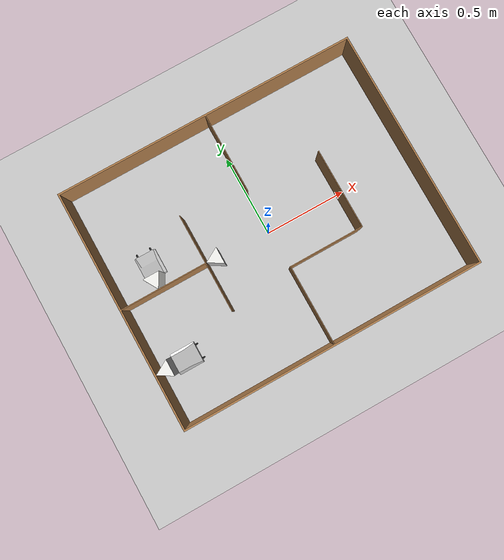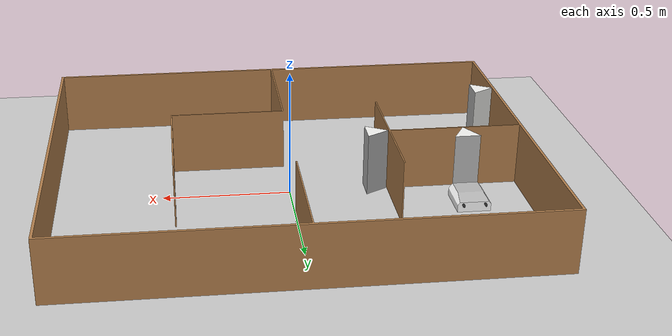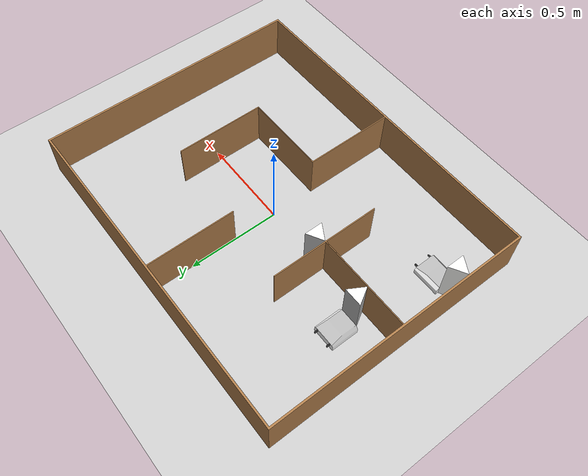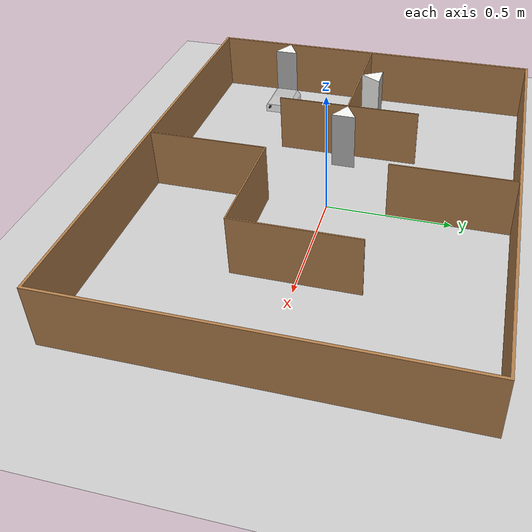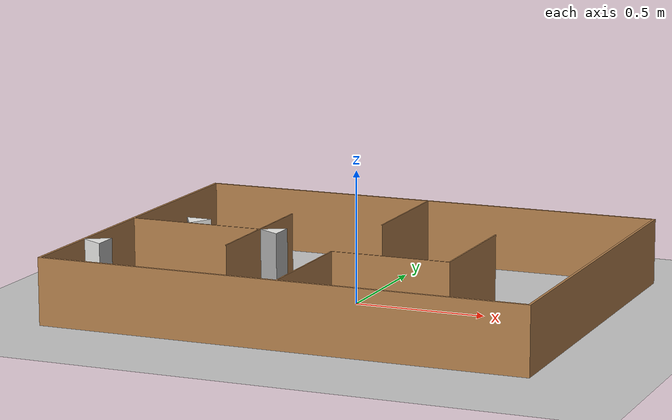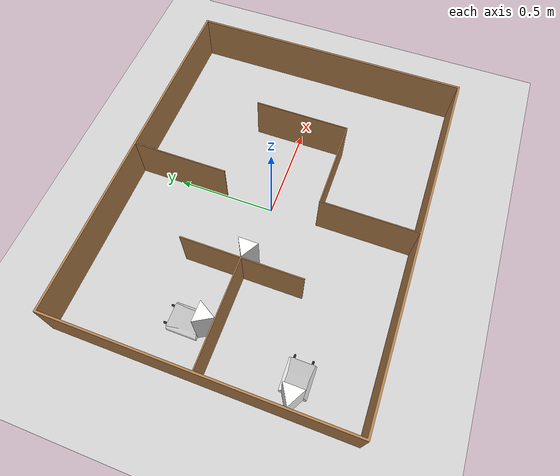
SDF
<sdf version="1.6">
 <world name="default">
  <light name="sun" type="directional">
   <pose>0 0 10 0 -0 0</pose>
   <diffuse>0.8 0.8 0.8 1</diffuse>
   <specular>0.2 0.2 0.2 1</specular>
   <attenuation>
    <range>1000</range>
    <constant>0.9</constant>
    <linear>0.01</linear>
    <quadratic>0.001</quadratic>
   </attenuation>
   <direction>-0.5 0.1 -0.9</direction>
  </light>
  <model name="ground_plane">
   <static>1</static>
   <link name="link">
    <collision name="collision">
     <geometry><plane><normal>0 0 1</normal><size>100 100</size></plane></geometry>
     <surface>
      <contact><collide_bitmask>65535</collide_bitmask></contact>
      <friction><ode><mu>100</mu><mu2>50</mu2></ode></friction>
     </surface>
    </collision>
    <visual name="visual">
     <cast_shadows>0</cast_shadows>
     <geometry><plane><normal>0 0 1</normal><size>100 100</size></plane></geometry>
     <material>
      <script><uri>file://media/materials/scripts/gazebo.material</uri><name>Gazebo/Grey</name></script>
     </material>
    </visual>
   </link>
  </model>
  <gravity>0 0 -9.8</gravity>
  <magnetic_field>6e-06 2.3e-05 -4.2e-05</magnetic_field>
  <atmosphere type="adiabatic"/>
  <physics name="default_physics" default="0" type="ode">
   <max_step_size>0.001</max_step_size>
   <real_time_factor>1</real_time_factor>
   <real_time_update_rate>1000</real_time_update_rate>
  </physics>
  <scene><ambient>0.4 0.4 0.4 1</ambient><background>0.7 0.7 0.7 1</background><shadows>1</shadows></scene>
  <spherical_coordinates>
   <surface_model>EARTH_WGS84</surface_model>
   <latitude_deg>0</latitude_deg>
   <longitude_deg>0</longitude_deg>
   <elevation>0</elevation>
   <heading_deg>0</heading_deg>
  </spherical_coordinates>
  <model name="docking_arena">
   <link name="link_0">
    <inertial>
     <mass>1</mass>
     <inertia>
      <ixx>0.166667</ixx>
      <ixy>0</ixy>
      <ixz>0</ixz>
      <iyy>0.166667</iyy>
      <iyz>0</iyz>
      <izz>0.166667</izz>
     </inertia>
    </inertial>
    <visual name="visual">
     <geometry>
      <mesh><uri>model://docking_arena/meshes/docking_arena.dae</uri><scale>1 1 1</scale></mesh>
     </geometry>
     <material>
      <lighting>1</lighting>
      <script><uri>file://media/materials/scripts/gazebo.material</uri><name>Gazebo/Wood</name></script>
      <ambient>0.3 0.3 0.3 1</ambient>
      <diffuse>0.7 0.7 0.7 1</diffuse>
      <specular>0.01 0.01 0.01 1</specular>
      <emissive>0 0 0 1</emissive>
     </material>
    </visual>
    <collision name="collision">
     <geometry>
      <mesh><uri>model://docking_arena/meshes/docking_arena.dae</uri><scale>1 1 1</scale></mesh>
     </geometry>
     <surface>
      <friction>
       <ode><mu>1</mu><mu2>1</mu2><fdir1>0 0 0</fdir1><slip1>0</slip1><slip2>0</slip2></ode>
       <torsional>
        <coefficient>1</coefficient>
        <patch_radius>0</patch_radius>
        <surface_radius>0</surface_radius>
        <use_patch_radius>1</use_patch_radius>
        <ode><slip>0</slip></ode>
       </torsional>
      </friction>
      <bounce><restitution_coefficient>0</restitution_coefficient><threshold>1e+06</threshold></bounce>
      <contact>
       <collide_without_contact>0</collide_without_contact>
       <collide_without_contact_bitmask>1</collide_without_contact_bitmask>
       <collide_bitmask>1</collide_bitmask>
       <ode>
        <soft_cfm>0</soft_cfm>
        <soft_erp>0.2</soft_erp>
        <kp>1e+13</kp>
        <kd>1</kd>
        <max_vel>0.01</max_vel>
        <min_depth>0</min_depth>
       </ode>
       <bullet>
        <split_impulse>1</split_impulse>
        <split_impulse_penetration_threshold>-0.01</split_impulse_penetration_threshold>
        <soft_cfm>0</soft_cfm>
        <soft_erp>0.2</soft_erp>
        <kp>1e+13</kp>
        <kd>1</kd>
       </bullet>
      </contact>
     </surface>
    </collision>
   </link>
   <static>1</static>
  </model>
  <model name="turn_obstacle">
   <link name="link_6">
    <inertial>
     <mass>1</mass>
     <inertia>
      <ixx>0.166667</ixx>
      <ixy>0</ixy>
      <ixz>0</ixz>
      <iyy>0.166667</iyy>
      <iyz>0</iyz>
      <izz>0.166667</izz>
     </inertia>
    </inertial>
    <visual name="visual">
     <geometry>
      <mesh><uri>model://turn_obstacle/meshes/turn_obstacle.dae</uri><scale>1 1 1</scale></mesh>
     </geometry>
    </visual>
    <collision name="collision">
     <geometry>
      <mesh><uri>model://turn_obstacle/meshes/turn_obstacle.dae</uri><scale>1 1 1</scale></mesh>
     </geometry>
     <surface>
      <friction>
       <ode><mu>1</mu><mu2>1</mu2><fdir1>0 0 0</fdir1><slip1>0</slip1><slip2>0</slip2></ode>
       <torsional>
        <coefficient>1</coefficient>
        <patch_radius>0</patch_radius>
        <surface_radius>0</surface_radius>
        <use_patch_radius>1</use_patch_radius>
        <ode><slip>0</slip></ode>
       </torsional>
      </friction>
      <bounce><restitution_coefficient>0</restitution_coefficient><threshold>1e+06</threshold></bounce>
      <contact>
       <collide_without_contact>0</collide_without_contact>
       <collide_without_contact_bitmask>1</collide_without_contact_bitmask>
       <collide_bitmask>1</collide_bitmask>
       <ode>
        <soft_cfm>0</soft_cfm>
        <soft_erp>0.2</soft_erp>
        <kp>1e+13</kp>
        <kd>1</kd>
        <max_vel>0.01</max_vel>
        <min_depth>0</min_depth>
       </ode>
       <bullet>
        <split_impulse>1</split_impulse>
        <split_impulse_penetration_threshold>-0.01</split_impulse_penetration_threshold>
        <soft_cfm>0</soft_cfm>
        <soft_erp>0.2</soft_erp>
        <kp>1e+13</kp>
        <kd>1</kd>
       </bullet>
      </contact>
     </surface>
    </collision>
   </link>
   <static>1</static>
   <pose>-0.33 0 0 0 0 -2.10257</pose>
  </model>
  <model name="home_obstacle">
   <link name="link_1">
    <inertial>
     <mass>1</mass>
     <inertia>
      <ixx>0.166667</ixx>
      <ixy>0</ixy>
      <ixz>0</ixz>
      <iyy>0.166667</iyy>
      <iyz>0</iyz>
      <izz>0.166667</izz>
     </inertia>
    </inertial>
    <visual name="visual">
     <geometry>
      <mesh><uri>model://home_obstacle/meshes/home_obstacle.dae</uri><scale>1 1 1</scale></mesh>
     </geometry>
    </visual>
    <collision name="collision">
     <geometry>
      <mesh><uri>model://home_obstacle/meshes/home_obstacle.dae</uri><scale>1 1 1</scale></mesh>
     </geometry>
     <surface>
      <friction>
       <ode><mu>1</mu><mu2>1</mu2><fdir1>0 0 0</fdir1><slip1>0</slip1><slip2>0</slip2></ode>
       <torsional>
        <coefficient>1</coefficient>
        <patch_radius>0</patch_radius>
        <surface_radius>0</surface_radius>
        <use_patch_radius>1</use_patch_radius>
        <ode><slip>0</slip></ode>
       </torsional>
      </friction>
      <bounce><restitution_coefficient>0</restitution_coefficient><threshold>1e+06</threshold></bounce>
      <contact>
       <collide_without_contact>0</collide_without_contact>
       <collide_without_contact_bitmask>1</collide_without_contact_bitmask>
       <collide_bitmask>1</collide_bitmask>
       <ode>
        <soft_cfm>0</soft_cfm>
        <soft_erp>0.2</soft_erp>
        <kp>1e+13</kp>
        <kd>1</kd>
        <max_vel>0.01</max_vel>
        <min_depth>0</min_depth>
       </ode>
       <bullet>
        <split_impulse>1</split_impulse>
        <split_impulse_penetration_threshold>-0.01</split_impulse_penetration_threshold>
        <soft_cfm>0</soft_cfm>
        <soft_erp>0.2</soft_erp>
        <kp>1e+13</kp>
        <kd>1</kd>
       </bullet>
      </contact>
     </surface>
    </collision>
   </link>
   <static>1</static>
   <pose>-0.857092 -0.4 0 0 -0 0</pose>
  </model>
  <model name="docking_station">
   <link name="link_0">
    <inertial>
     <mass>1</mass>
     <inertia>
      <ixx>0.166667</ixx>
      <ixy>0</ixy>
      <ixz>0</ixz>
      <iyy>0.166667</iyy>
      <iyz>0</iyz>
      <izz>0.166667</izz>
     </inertia>
    </inertial>
    <visual name="visual">
     <geometry><mesh><uri>model://docking_station/meshes/docking.dae</uri><scale>1 1 1</scale></mesh></geometry>
    </visual>
    <collision name="collision">
     <geometry><mesh><uri>model://docking_station/meshes/docking.dae</uri><scale>1 1 1</scale></mesh></geometry>
     <surface>
      <friction>
       <ode><mu>1</mu><mu2>1</mu2><fdir1>0 0 0</fdir1><slip1>0</slip1><slip2>0</slip2></ode>
       <torsional>
        <coefficient>1</coefficient>
        <patch_radius>0</patch_radius>
        <surface_radius>0</surface_radius>
        <use_patch_radius>1</use_patch_radius>
        <ode><slip>0</slip></ode>
       </torsional>
      </friction>
      <bounce><restitution_coefficient>0</restitution_coefficient><threshold>1e+06</threshold></bounce>
      <contact>
       <collide_without_contact>0</collide_without_contact>
       <collide_without_contact_bitmask>1</collide_without_contact_bitmask>
       <collide_bitmask>1</collide_bitmask>
       <ode>
        <soft_cfm>0</soft_cfm>
        <soft_erp>0.2</soft_erp>
        <kp>1e+13</kp>
        <kd>1</kd>
        <max_vel>0.01</max_vel>
        <min_depth>0</min_depth>
       </ode>
       <bullet>
        <split_impulse>1</split_impulse>
        <split_impulse_penetration_threshold>-0.01</split_impulse_penetration_threshold>
        <soft_cfm>0</soft_cfm>
        <soft_erp>0.2</soft_erp>
        <kp>1e+13</kp>
        <kd>1</kd>
       </bullet>
      </contact>
     </surface>
    </collision>
   </link>
   <static>1</static>
   <pose>-0.828807 -0.4 0 0 -0 0</pose>
  </model>
  <model name="parking_obstacle">
   <link name="link_2">
    <inertial>
     <mass>1</mass>
     <inertia>
      <ixx>0.166667</ixx>
      <ixy>0</ixy>
      <ixz>0</ixz>
      <iyy>0.166667</iyy>
      <iyz>0</iyz>
      <izz>0.166667</izz>
     </inertia>
    </inertial>
    <visual name="visual">
     <geometry>
      <mesh><uri>model://parking_obstacle/meshes/parking_obstacle.dae</uri><scale>1 1 1</scale></mesh>
     </geometry>
    </visual>
    <collision name="collision">
     <geometry>
      <mesh><uri>model://parking_obstacle/meshes/parking_obstacle.dae</uri><scale>1 1 1</scale></mesh>
     </geometry>
     <surface>
      <friction>
       <ode><mu>1</mu><mu2>1</mu2><fdir1>0 0 0</fdir1><slip1>0</slip1><slip2>0</slip2></ode>
       <torsional>
        <coefficient>1</coefficient>
        <patch_radius>0</patch_radius>
        <surface_radius>0</surface_radius>
        <use_patch_radius>1</use_patch_radius>
        <ode><slip>0</slip></ode>
       </torsional>
      </friction>
      <bounce><restitution_coefficient>0</restitution_coefficient><threshold>1e+06</threshold></bounce>
      <contact>
       <collide_without_contact>0</collide_without_contact>
       <collide_without_contact_bitmask>1</collide_without_contact_bitmask>
       <collide_bitmask>1</collide_bitmask>
       <ode>
        <soft_cfm>0</soft_cfm>
        <soft_erp>0.2</soft_erp>
        <kp>1e+13</kp>
        <kd>1</kd>
        <max_vel>0.01</max_vel>
        <min_depth>0</min_depth>
       </ode>
       <bullet>
        <split_impulse>1</split_impulse>
        <split_impulse_penetration_threshold>-0.01</split_impulse_penetration_threshold>
        <soft_cfm>0</soft_cfm>
        <soft_erp>0.2</soft_erp>
        <kp>1e+13</kp>
        <kd>1</kd>
       </bullet>
      </contact>
     </surface>
    </collision>
   </link>
   <static>1</static>
   <pose>-0.684719 0.060084 0 0 0 -2.61741</pose>
  </model>
  <model name="docking_station_0">
   <link name="link_0">
    <inertial>
     <mass>1</mass>
     <inertia>
      <ixx>0.166667</ixx>
      <ixy>0</ixy>
      <ixz>0</ixz>
      <iyy>0.166667</iyy>
      <iyz>0</iyz>
      <izz>0.166667</izz>
     </inertia>
    </inertial>
    <visual name="visual">
     <geometry><mesh><uri>model://docking_station/meshes/docking.dae</uri><scale>1 1 1</scale></mesh></geometry>
    </visual>
    <collision name="collision">
     <geometry><mesh><uri>model://docking_station/meshes/docking.dae</uri><scale>1 1 1</scale></mesh></geometry>
     <surface>
      <friction>
       <ode><mu>1</mu><mu2>1</mu2><fdir1>0 0 0</fdir1><slip1>0</slip1><slip2>0</slip2></ode>
       <torsional>
        <coefficient>1</coefficient>
        <patch_radius>0</patch_radius>
        <surface_radius>0</surface_radius>
        <use_patch_radius>1</use_patch_radius>
        <ode><slip>0</slip></ode>
       </torsional>
      </friction>
      <bounce><restitution_coefficient>0</restitution_coefficient><threshold>1e+06</threshold></bounce>
      <contact>
       <collide_without_contact>0</collide_without_contact>
       <collide_without_contact_bitmask>1</collide_without_contact_bitmask>
       <collide_bitmask>1</collide_bitmask>
       <ode>
        <soft_cfm>0</soft_cfm>
        <soft_erp>0.2</soft_erp>
        <kp>1e+13</kp>
        <kd>1</kd>
        <max_vel>0.01</max_vel>
        <min_depth>0</min_depth>
       </ode>
       <bullet>
        <split_impulse>1</split_impulse>
        <split_impulse_penetration_threshold>-0.01</split_impulse_penetration_threshold>
        <soft_cfm>0</soft_cfm>
        <soft_erp>0.2</soft_erp>
        <kp>1e+13</kp>
        <kd>1</kd>
       </bullet>
      </contact>
     </surface>
    </collision>
   </link>
   <static>1</static>
   <pose>-0.684953 0.08982 0 0 -0 1.57</pose>
  </model>
  <light name="user_spot_light_0" type="spot">
   <pose>-0.657754 0.357604 1 0 -0 0</pose>
   <diffuse>0.5 0.5 0.5 1</diffuse>
   <specular>0.1 0.1 0.1 1</specular>
   <direction>0 0 -1</direction>
   <attenuation>
    <range>20</range>
    <constant>0.5</constant>
    <linear>0.01</linear>
    <quadratic>0.001</quadratic>
   </attenuation>
   <cast_shadows>0</cast_shadows>
   <spot><inner_angle>0.6</inner_angle><outer_angle>1</outer_angle><falloff>1</falloff></spot>
  </light>
 </world>
</sdf>
